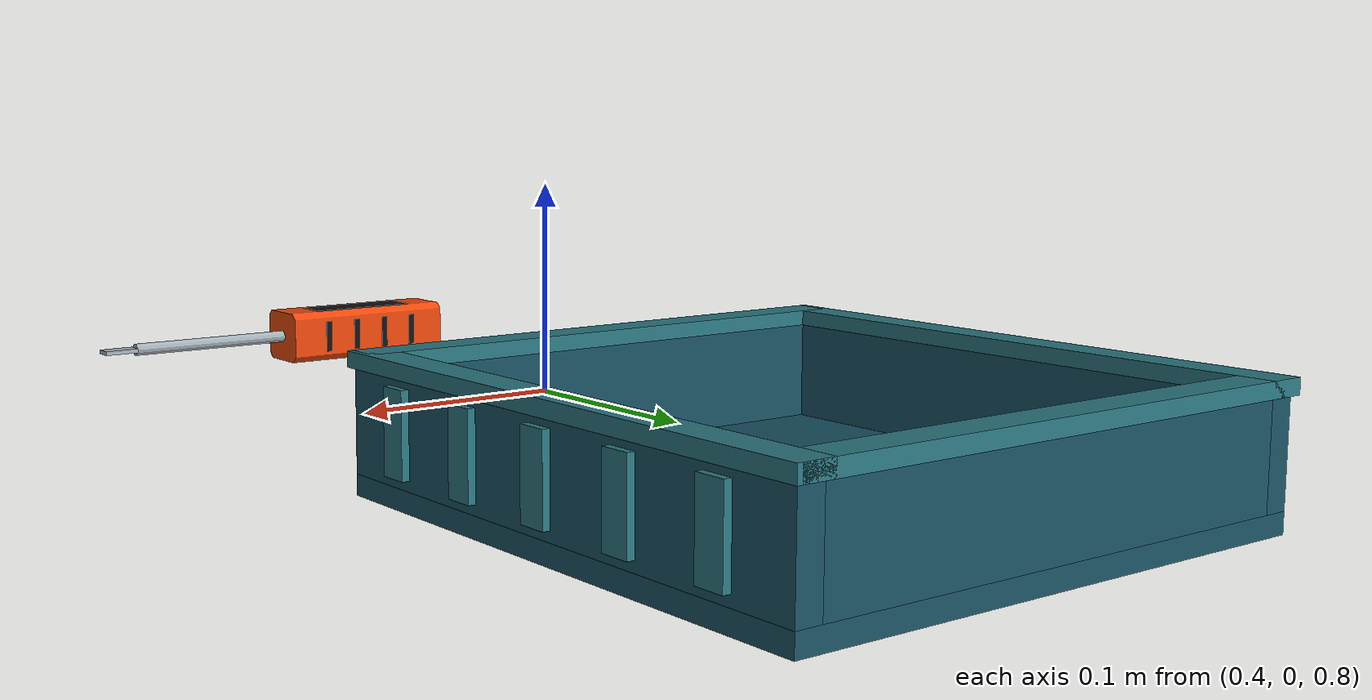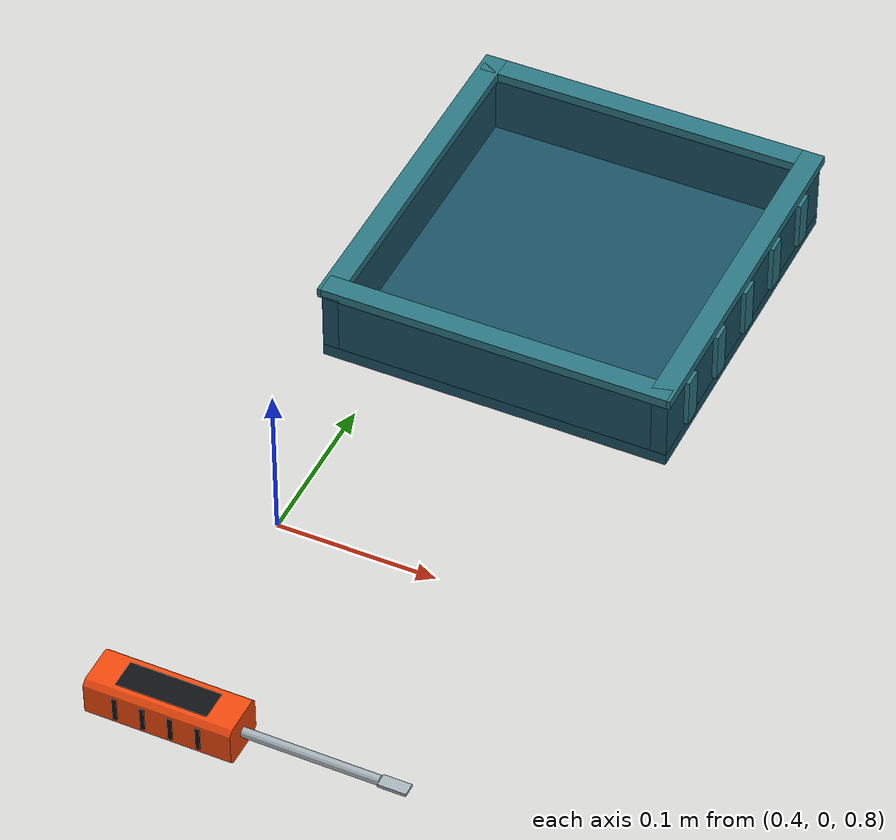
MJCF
<?xml version='1.0' encoding='utf-8'?>
<mujoco>
  <asset>
    <material name="bin_plastic" rgba=".10 .32 .39 1" specular=".25" shininess=".3" />
    <material name="bin_rim" rgba=".17 .47 .51 1" specular=".25" shininess=".3" />
    <material name="tool_orange" rgba=".94 .28 .045 1" specular=".45" shininess=".4" />
    <material name="tool_rubber" rgba=".055 .065 .07 1" specular=".45" shininess=".4" />
    <material name="tool_metal" rgba=".65 .70 .73 1" specular=".45" shininess=".4" />
    <mesh name="demo_handle_mesh" vertex="-0.012 -0.045 -0.013 0.012 -0.045 -0.013 0.015 -0.045 -0.01 0.015 -0.045 0.01 0.012 -0.045 0.013 -0.012 -0.045 0.013 -0.015 -0.045 0.01 -0.015 -0.045 -0.01 -0.012 0.045 -0.013 0.012 0.045 -0.013 0.015 0.045 -0.01 0.015 0.045 0.01 0.012 0.045 0.013 -0.012 0.045 0.013 -0.015 0.045 0.01 -0.015 0.045 -0.01" />
    <mesh name="demo_shaft_mesh" vertex="0.003 -0.128 0.0 0.0025980762113533163 -0.128 0.0014999999999999998 0.0015000000000000005 -0.128 0.002598076211353316 1.8369701987210298e-19 -0.128 0.003 -0.0014999999999999994 -0.128 0.0025980762113533163 -0.0025980762113533163 -0.128 0.0014999999999999998 -0.003 -0.128 3.6739403974420597e-19 -0.0025980762113533163 -0.128 -0.0014999999999999992 -0.0015000000000000013 -0.128 -0.002598076211353315 -5.510910596163089e-19 -0.128 -0.003 0.0015000000000000005 -0.128 -0.002598076211353316 0.002598076211353315 -0.128 -0.0015000000000000013 0.003 -0.045 0.0 0.0025980762113533163 -0.045 0.0014999999999999998 0.0015000000000000005 -0.045 0.002598076211353316 1.8369701987210298e-19 -0.045 0.003 -0.0014999999999999994 -0.045 0.0025980762113533163 -0.0025980762113533163 -0.045 0.0014999999999999998 -0.003 -0.045 3.6739403974420597e-19 -0.0025980762113533163 -0.045 -0.0014999999999999992 -0.0015000000000000013 -0.045 -0.002598076211353315 -5.510910596163089e-19 -0.045 -0.003 0.0015000000000000005 -0.045 -0.002598076211353316 0.002598076211353315 -0.045 -0.0015000000000000013" />
    <mesh name="demo_tip_mesh" vertex="-0.004 -0.145 -0.001 0.004 -0.145 -0.001 0.004 -0.145 0.001 -0.004 -0.145 0.001 -0.004 -0.128 -0.001 0.004 -0.128 -0.001 0.004 -0.128 0.001 -0.004 -0.128 0.001" />
  </asset>
  <worldbody>
    <body name="real_screwdriver" pos=".415 -.16 .8135" quat="0.7071067811865476 0 0 0.7071067811865476">
      <freejoint name="fj_screwdriver" />
      <inertial pos="0 0 0" mass="0.1" diaginertia=".0002 .00002 .0002" />
      <geom name="screwdriver_handle" type="mesh" mesh="demo_handle_mesh" material="tool_orange" contype="1" conaffinity="1023" condim="4" friction="2 .03 .001" />
      <geom name="screwdriver_shaft" type="mesh" mesh="demo_shaft_mesh" material="tool_metal" contype="1" conaffinity="1023" condim="4" friction="2 .03 .001" />
      <geom name="screwdriver_tip" type="mesh" mesh="demo_tip_mesh" material="tool_metal" contype="1" conaffinity="1023" condim="4" friction="2 .03 .001" />
      <geom name="handle_grip_-1" type="box" pos="0 0 -0.0131" size=".009 .028 .0002" material="tool_rubber" contype="0" conaffinity="0" />
      <geom name="handle_rib_-1_0" type="box" pos="-0.0151 -0.025 0" size=".0002 .0015 .008" material="tool_rubber" contype="0" conaffinity="0" />
      <geom name="handle_rib_-1_1" type="box" pos="-0.0151 -0.008 0" size=".0002 .0015 .008" material="tool_rubber" contype="0" conaffinity="0" />
      <geom name="handle_rib_-1_2" type="box" pos="-0.0151 0.009000000000000001 0" size=".0002 .0015 .008" material="tool_rubber" contype="0" conaffinity="0" />
      <geom name="handle_rib_-1_3" type="box" pos="-0.0151 0.026000000000000002 0" size=".0002 .0015 .008" material="tool_rubber" contype="0" conaffinity="0" />
      <geom name="handle_grip_1" type="box" pos="0 0 0.0131" size=".009 .028 .0002" material="tool_rubber" contype="0" conaffinity="0" />
      <geom name="handle_rib_1_0" type="box" pos="0.0151 -0.025 0" size=".0002 .0015 .008" material="tool_rubber" contype="0" conaffinity="0" />
      <geom name="handle_rib_1_1" type="box" pos="0.0151 -0.008 0" size=".0002 .0015 .008" material="tool_rubber" contype="0" conaffinity="0" />
      <geom name="handle_rib_1_2" type="box" pos="0.0151 0.009000000000000001 0" size=".0002 .0015 .008" material="tool_rubber" contype="0" conaffinity="0" />
      <geom name="handle_rib_1_3" type="box" pos="0.0151 0.026000000000000002 0" size=".0002 .0015 .008" material="tool_rubber" contype="0" conaffinity="0" />
    </body>
    <body name="drop_box" pos=".471 .253 .8">
      <geom name="bin_bottom" type="box" pos="0 0 0.004" size="0.11 0.115 0.004" material="bin_plastic" contype="1" conaffinity="1023" />
      <geom name="bin_wall_x-1" type="box" pos="-0.105 0 0.029" size="0.005 0.115 0.021" material="bin_plastic" contype="1" conaffinity="1023" />
      <geom name="bin_wall_y-1" type="box" pos="0 -0.11 0.029" size="0.1 0.005 0.021" material="bin_plastic" contype="1" conaffinity="1023" />
      <geom name="bin_rim_x-1" type="box" pos="-0.105 0 0.05" size="0.007 0.117 0.003" material="bin_rim" contype="1" conaffinity="1023" />
      <geom name="bin_rim_y-1" type="box" pos="0 -0.11 0.05" size="0.11 0.007 0.003" material="bin_rim" contype="1" conaffinity="1023" />
      <geom name="bin_rib_-1_0" type="box" pos="-0.111 -0.084 0.028" size="0.002 0.006 0.016" material="bin_rim" contype="0" conaffinity="0" />
      <geom name="bin_rib_-1_1" type="box" pos="-0.111 -0.042 0.028" size="0.002 0.006 0.016" material="bin_rim" contype="0" conaffinity="0" />
      <geom name="bin_rib_-1_2" type="box" pos="-0.111 0 0.028" size="0.002 0.006 0.016" material="bin_rim" contype="0" conaffinity="0" />
      <geom name="bin_rib_-1_3" type="box" pos="-0.111 0.042 0.028" size="0.002 0.006 0.016" material="bin_rim" contype="0" conaffinity="0" />
      <geom name="bin_rib_-1_4" type="box" pos="-0.111 0.084 0.028" size="0.002 0.006 0.016" material="bin_rim" contype="0" conaffinity="0" />
      <geom name="bin_wall_x1" type="box" pos="0.105 0 0.029" size="0.005 0.115 0.021" material="bin_plastic" contype="1" conaffinity="1023" />
      <geom name="bin_wall_y1" type="box" pos="0 0.11 0.029" size="0.1 0.005 0.021" material="bin_plastic" contype="1" conaffinity="1023" />
      <geom name="bin_rim_x1" type="box" pos="0.105 0 0.05" size="0.007 0.117 0.003" material="bin_rim" contype="1" conaffinity="1023" />
      <geom name="bin_rim_y1" type="box" pos="0 0.11 0.05" size="0.11 0.007 0.003" material="bin_rim" contype="1" conaffinity="1023" />
      <geom name="bin_rib_1_0" type="box" pos="0.111 -0.084 0.028" size="0.002 0.006 0.016" material="bin_rim" contype="0" conaffinity="0" />
      <geom name="bin_rib_1_1" type="box" pos="0.111 -0.042 0.028" size="0.002 0.006 0.016" material="bin_rim" contype="0" conaffinity="0" />
      <geom name="bin_rib_1_2" type="box" pos="0.111 0 0.028" size="0.002 0.006 0.016" material="bin_rim" contype="0" conaffinity="0" />
      <geom name="bin_rib_1_3" type="box" pos="0.111 0.042 0.028" size="0.002 0.006 0.016" material="bin_rim" contype="0" conaffinity="0" />
      <geom name="bin_rib_1_4" type="box" pos="0.111 0.084 0.028" size="0.002 0.006 0.016" material="bin_rim" contype="0" conaffinity="0" />
    </body>
  </worldbody>
</mujoco>
